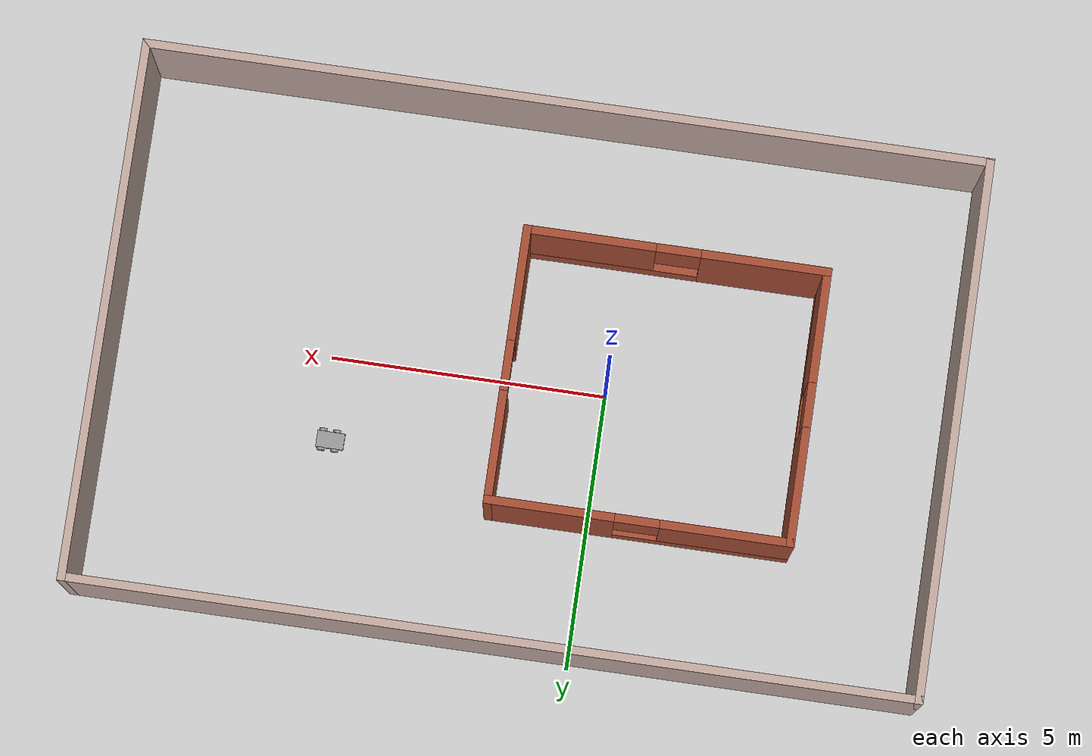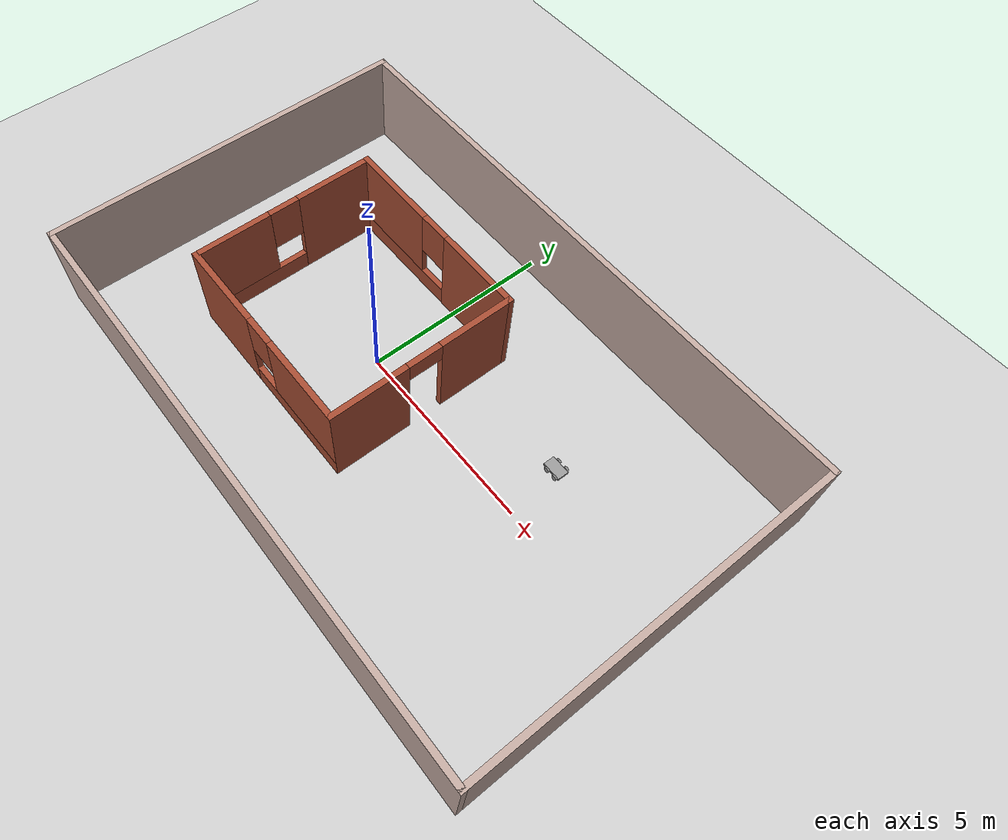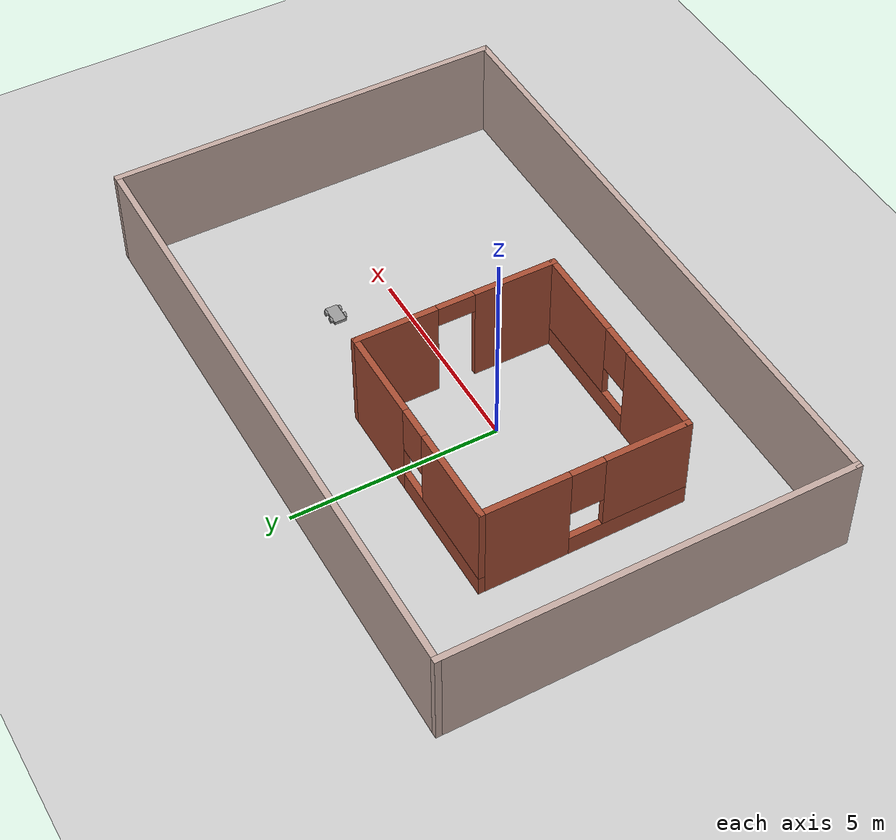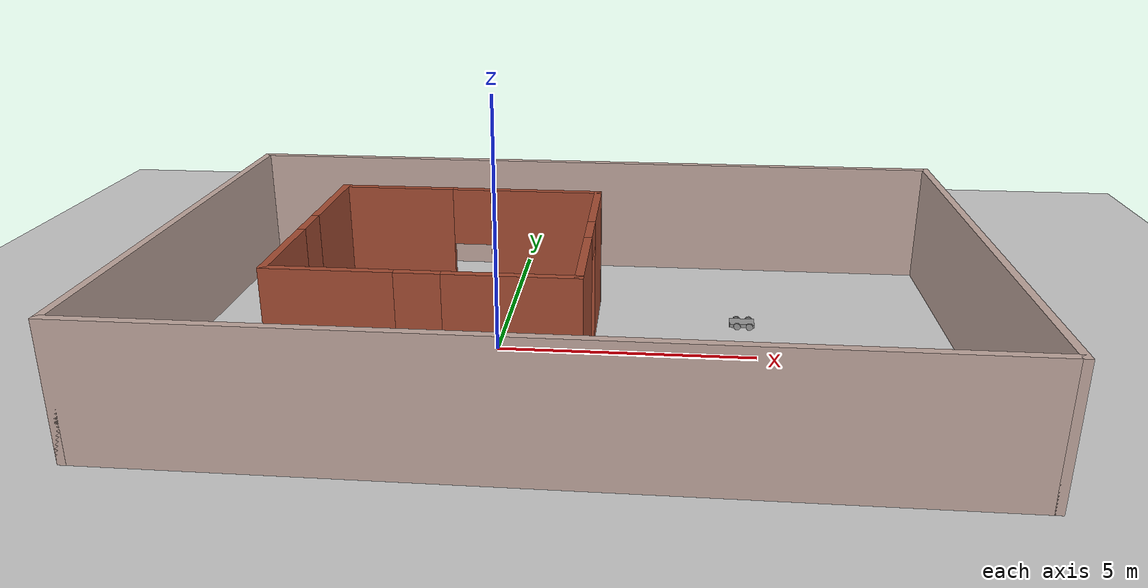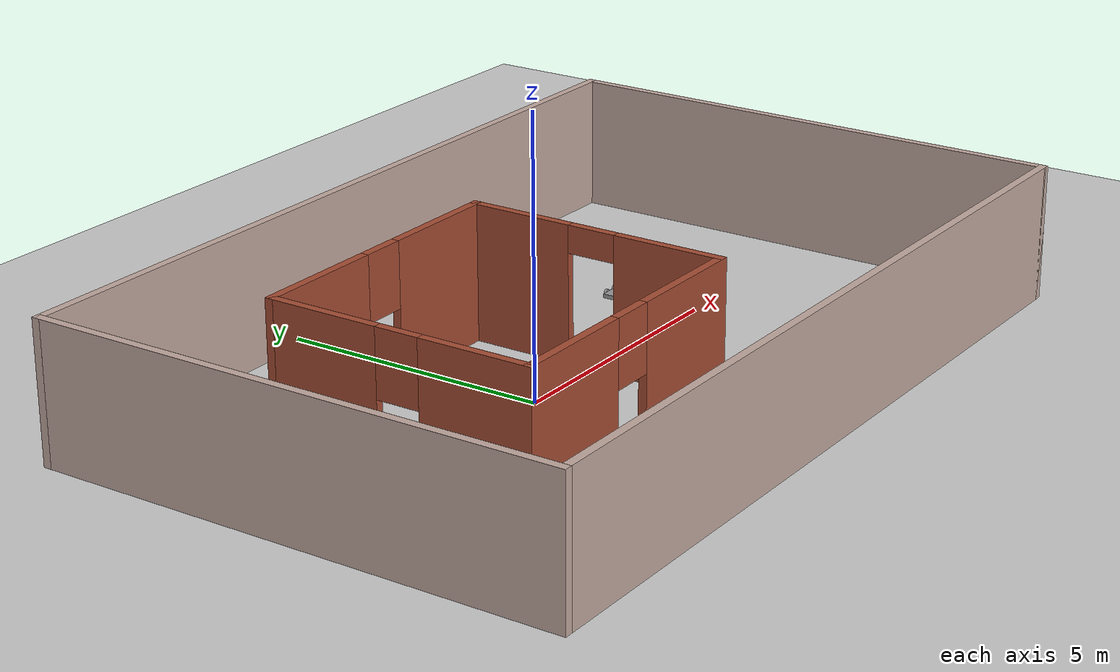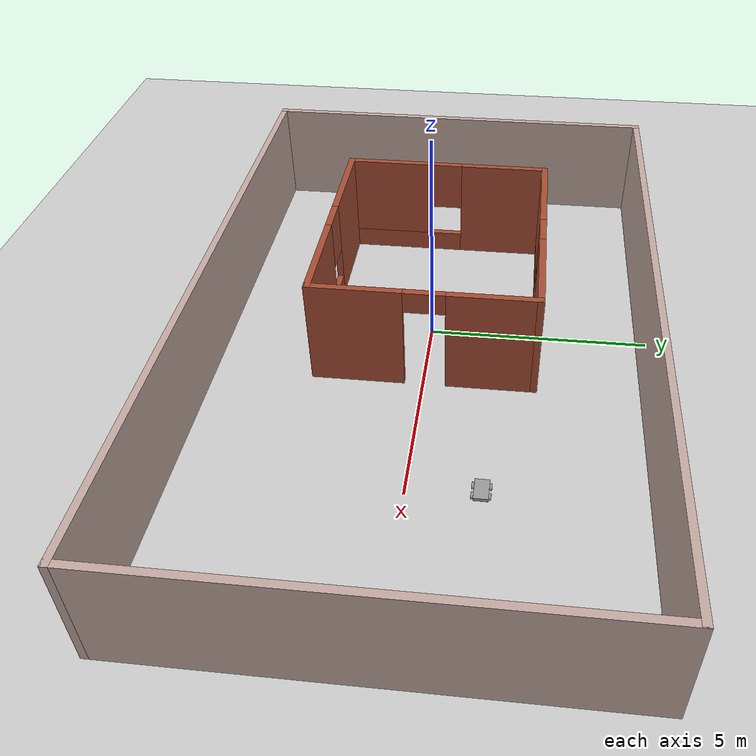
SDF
<sdf version="1.6">
 <world name="default">
  <model name="ground_plane">
   <static>1</static>
   <link name="link">
    <collision name="collision">
     <geometry><plane><normal>0 0 1</normal><size>100 100</size></plane></geometry>
     <surface><friction><ode><mu>100</mu><mu2>50</mu2></ode></friction></surface>
    </collision>
    <visual name="visual">
     <cast_shadows>0</cast_shadows>
     <geometry><plane><normal>0 0 1</normal><size>100 100</size></plane></geometry>
     <material>
      <script><uri>file://media/materials/scripts/gazebo.material</uri><name>Gazebo/Grey</name></script>
     </material>
    </visual>
   </link>
  </model>
  <model name="building">
   <pose>1.39115 0.036219 0 0 -0 0</pose>
   <link name="Wall_0">
    <collision name="Wall_0_Collision">
     <geometry><box><size>9.75 0.15 2.5</size></box></geometry>
     <pose>0 0 1.25 0 -0 0</pose>
    </collision>
    <visual name="Wall_0_Visual">
     <pose>0 0 1.25 0 -0 0</pose>
     <geometry><box><size>9.75 0.15 2.5</size></box></geometry>
     <material>
      <script><uri>file://media/materials/scripts/gazebo.material</uri><name>Gazebo/Grey</name></script>
      <ambient>0.760784 0.662745 0.627451 1</ambient>
     </material>
     <meta><layer>0</layer></meta>
    </visual>
    <pose>-7.55 0 0 0 0 -1.5708</pose>
   </link>
   <link name="Wall_1">
    <collision name="Wall_1_Collision">
     <geometry><box><size>15.25 0.15 2.5</size></box></geometry>
     <pose>0 0 1.25 0 -0 0</pose>
    </collision>
    <visual name="Wall_1_Visual">
     <pose>0 0 1.25 0 -0 0</pose>
     <geometry><box><size>15.25 0.15 2.5</size></box></geometry>
     <material>
      <script><uri>file://media/materials/scripts/gazebo.material</uri><name>Gazebo/Grey</name></script>
      <ambient>0.760784 0.662745 0.627451 1</ambient>
     </material>
     <meta><layer>0</layer></meta>
    </visual>
    <pose>0 -4.8 0 0 -0 0</pose>
   </link>
   <link name="Wall_11">
    <pose>0.384171 -0.024587 0 0 -0 1.5708</pose>
    <visual name="Wall_11_Visual_0">
     <pose>-1.46229 0 1.25 0 -0 0</pose>
     <geometry><box><size>2.07541 0.15 2.5</size></box></geometry>
     <material>
      <script><uri>file://media/materials/scripts/gazebo.material</uri><name>Gazebo/Bricks</name></script>
      <ambient>1 1 1 1</ambient>
     </material>
     <meta><layer>0</layer></meta>
    </visual>
    <collision name="Wall_11_Collision_0">
     <geometry><box><size>2.07541 0.15 2.5</size></box></geometry>
     <pose>-1.46229 0 1.25 0 -0 0</pose>
    </collision>
    <visual name="Wall_11_Visual_1">
     <pose>1.48771 0 1.25 0 -0 0</pose>
     <geometry><box><size>2.02459 0.15 2.5</size></box></geometry>
     <material>
      <script><uri>file://media/materials/scripts/gazebo.material</uri><name>Gazebo/Bricks</name></script>
      <ambient>1 1 1 1</ambient>
     </material>
     <meta><layer>0</layer></meta>
    </visual>
    <collision name="Wall_11_Collision_1">
     <geometry><box><size>2.02459 0.15 2.5</size></box></geometry>
     <pose>1.48771 0 1.25 0 -0 0</pose>
    </collision>
    <visual name="Wall_11_Visual_2">
     <pose>0.025413 0 2.25 0 -0 0</pose>
     <geometry><box><size>0.9 0.15 0.5</size></box></geometry>
     <material>
      <script><uri>file://media/materials/scripts/gazebo.material</uri><name>Gazebo/Bricks</name></script>
      <ambient>1 1 1 1</ambient>
     </material>
     <meta><layer>0</layer></meta>
    </visual>
    <collision name="Wall_11_Collision_2">
     <geometry><box><size>0.9 0.15 0.5</size></box></geometry>
     <pose>0.025413 0 2.25 0 -0 0</pose>
    </collision>
   </link>
   <link name="Wall_12">
    <pose>-2.29083 2.40041 0 0 -0 3.14159</pose>
    <visual name="Wall_12_Visual_0">
     <pose>-1.59111 0 1.25 0 -0 0</pose>
     <geometry><box><size>2.31777 0.15 2.5</size></box></geometry>
     <material>
      <script><uri>file://media/materials/scripts/gazebo.material</uri><name>Gazebo/Bricks</name></script>
      <ambient>1 1 1 1</ambient>
     </material>
     <meta><layer>0</layer></meta>
    </visual>
    <collision name="Wall_12_Collision_0">
     <geometry><box><size>2.31777 0.15 2.5</size></box></geometry>
     <pose>-1.59111 0 1.25 0 -0 0</pose>
    </collision>
    <visual name="Wall_12_Visual_1">
     <pose>1.15889 0 0.25 0 -0 0</pose>
     <geometry><box><size>3.18223 0.15 0.5</size></box></geometry>
     <material>
      <script><uri>file://media/materials/scripts/gazebo.material</uri><name>Gazebo/Bricks</name></script>
      <ambient>1 1 1 1</ambient>
     </material>
     <meta><layer>0</layer></meta>
    </visual>
    <collision name="Wall_12_Collision_1">
     <geometry><box><size>3.18223 0.15 0.5</size></box></geometry>
     <pose>1.15889 0 0.25 0 -0 0</pose>
    </collision>
    <visual name="Wall_12_Visual_2">
     <pose>1.55889 0 1.5 0 -0 0</pose>
     <geometry><box><size>2.38223 0.15 2</size></box></geometry>
     <material>
      <script><uri>file://media/materials/scripts/gazebo.material</uri><name>Gazebo/Bricks</name></script>
      <ambient>1 1 1 1</ambient>
     </material>
     <meta><layer>0</layer></meta>
    </visual>
    <collision name="Wall_12_Collision_2">
     <geometry><box><size>2.38223 0.15 2</size></box></geometry>
     <pose>1.55889 0 1.5 0 -0 0</pose>
    </collision>
    <visual name="Wall_12_Visual_3">
     <pose>-0.032227 0 1.9 0 -0 0</pose>
     <geometry><box><size>0.8 0.15 1.2</size></box></geometry>
     <material>
      <script><uri>file://media/materials/scripts/gazebo.material</uri><name>Gazebo/Bricks</name></script>
      <ambient>1 1 1 1</ambient>
     </material>
     <meta><layer>0</layer></meta>
    </visual>
    <collision name="Wall_12_Collision_3">
     <geometry><box><size>0.8 0.15 1.2</size></box></geometry>
     <pose>-0.032227 0 1.9 0 -0 0</pose>
    </collision>
   </link>
   <link name="Wall_4">
    <collision name="Wall_4_Collision">
     <geometry><box><size>15.25 0.15 2.5</size></box></geometry>
     <pose>0 0 1.25 0 -0 0</pose>
    </collision>
    <visual name="Wall_4_Visual">
     <pose>0 0 1.25 0 -0 0</pose>
     <geometry><box><size>15.25 0.15 2.5</size></box></geometry>
     <material>
      <script><uri>file://media/materials/scripts/gazebo.material</uri><name>Gazebo/Grey</name></script>
      <ambient>0.760784 0.662745 0.627451 1</ambient>
     </material>
     <meta><layer>0</layer></meta>
    </visual>
    <pose>0 4.8 0 0 -0 0</pose>
   </link>
   <link name="Wall_5">
    <collision name="Wall_5_Collision">
     <geometry><box><size>9.75 0.15 2.5</size></box></geometry>
     <pose>0 0 1.25 0 -0 0</pose>
    </collision>
    <visual name="Wall_5_Visual">
     <pose>0 0 1.25 0 -0 0</pose>
     <geometry><box><size>9.75 0.15 2.5</size></box></geometry>
     <material>
      <script><uri>file://media/materials/scripts/gazebo.material</uri><name>Gazebo/Grey</name></script>
      <ambient>0.760784 0.662745 0.627451 1</ambient>
     </material>
     <meta><layer>0</layer></meta>
    </visual>
    <pose>7.55 0 0 0 0 -1.5708</pose>
   </link>
   <link name="Wall_7">
    <pose>-4.96583 -0.024587 0 0 0 -1.5708</pose>
    <visual name="Wall_7_Visual_0">
     <pose>-1.43194 0 1.25 0 -0 0</pose>
     <geometry><box><size>2.13612 0.15 2.5</size></box></geometry>
     <material>
      <script><uri>file://media/materials/scripts/gazebo.material</uri><name>Gazebo/Bricks</name></script>
      <ambient>1 1 1 1</ambient>
     </material>
     <meta><layer>0</layer></meta>
    </visual>
    <collision name="Wall_7_Collision_0">
     <geometry><box><size>2.13612 0.15 2.5</size></box></geometry>
     <pose>-1.43194 0 1.25 0 -0 0</pose>
    </collision>
    <visual name="Wall_7_Visual_1">
     <pose>1.06806 0 0.25 0 -0 0</pose>
     <geometry><box><size>2.86388 0.15 0.5</size></box></geometry>
     <material>
      <script><uri>file://media/materials/scripts/gazebo.material</uri><name>Gazebo/Bricks</name></script>
      <ambient>1 1 1 1</ambient>
     </material>
     <meta><layer>0</layer></meta>
    </visual>
    <collision name="Wall_7_Collision_1">
     <geometry><box><size>2.86388 0.15 0.5</size></box></geometry>
     <pose>1.06806 0 0.25 0 -0 0</pose>
    </collision>
    <visual name="Wall_7_Visual_2">
     <pose>1.46806 0 1.5 0 -0 0</pose>
     <geometry><box><size>2.06388 0.15 2</size></box></geometry>
     <material>
      <script><uri>file://media/materials/scripts/gazebo.material</uri><name>Gazebo/Bricks</name></script>
      <ambient>1 1 1 1</ambient>
     </material>
     <meta><layer>0</layer></meta>
    </visual>
    <collision name="Wall_7_Collision_2">
     <geometry><box><size>2.06388 0.15 2</size></box></geometry>
     <pose>1.46806 0 1.5 0 -0 0</pose>
    </collision>
    <visual name="Wall_7_Visual_3">
     <pose>0.036115 0 1.9 0 -0 0</pose>
     <geometry><box><size>0.8 0.15 1.2</size></box></geometry>
     <material>
      <script><uri>file://media/materials/scripts/gazebo.material</uri><name>Gazebo/Bricks</name></script>
      <ambient>1 1 1 1</ambient>
     </material>
     <meta><layer>0</layer></meta>
    </visual>
    <collision name="Wall_7_Collision_3">
     <geometry><box><size>0.8 0.15 1.2</size></box></geometry>
     <pose>0.036115 0 1.9 0 -0 0</pose>
    </collision>
   </link>
   <link name="Wall_8">
    <pose>-2.29083 -2.44959 0 0 -0 0</pose>
    <visual name="Wall_8_Visual_0">
     <pose>-1.58965 0 1.25 0 -0 0</pose>
     <geometry><box><size>2.3207 0.15 2.5</size></box></geometry>
     <material>
      <script><uri>file://media/materials/scripts/gazebo.material</uri><name>Gazebo/Bricks</name></script>
      <ambient>1 1 1 1</ambient>
     </material>
     <meta><layer>0</layer></meta>
    </visual>
    <collision name="Wall_8_Collision_0">
     <geometry><box><size>2.3207 0.15 2.5</size></box></geometry>
     <pose>-1.58965 0 1.25 0 -0 0</pose>
    </collision>
    <visual name="Wall_8_Visual_1">
     <pose>1.16035 0 0.25 0 -0 0</pose>
     <geometry><box><size>3.1793 0.15 0.5</size></box></geometry>
     <material>
      <script><uri>file://media/materials/scripts/gazebo.material</uri><name>Gazebo/Bricks</name></script>
      <ambient>1 1 1 1</ambient>
     </material>
     <meta><layer>0</layer></meta>
    </visual>
    <collision name="Wall_8_Collision_1">
     <geometry><box><size>3.1793 0.15 0.5</size></box></geometry>
     <pose>1.16035 0 0.25 0 -0 0</pose>
    </collision>
    <visual name="Wall_8_Visual_2">
     <pose>1.56035 0 1.5 0 -0 0</pose>
     <geometry><box><size>2.3793 0.15 2</size></box></geometry>
     <material>
      <script><uri>file://media/materials/scripts/gazebo.material</uri><name>Gazebo/Bricks</name></script>
      <ambient>1 1 1 1</ambient>
     </material>
     <meta><layer>0</layer></meta>
    </visual>
    <collision name="Wall_8_Collision_2">
     <geometry><box><size>2.3793 0.15 2</size></box></geometry>
     <pose>1.56035 0 1.5 0 -0 0</pose>
    </collision>
    <visual name="Wall_8_Visual_3">
     <pose>-0.029301 0 1.9 0 -0 0</pose>
     <geometry><box><size>0.8 0.15 1.2</size></box></geometry>
     <material>
      <script><uri>file://media/materials/scripts/gazebo.material</uri><name>Gazebo/Bricks</name></script>
      <ambient>1 1 1 1</ambient>
     </material>
     <meta><layer>0</layer></meta>
    </visual>
    <collision name="Wall_8_Collision_3">
     <geometry><box><size>0.8 0.15 1.2</size></box></geometry>
     <pose>-0.029301 0 1.9 0 -0 0</pose>
    </collision>
   </link>
   <static>1</static>
  </model>
  <model name="fourwheelrobot_0">
   <link name="link_0">
    <pose>-0.025 0.182607 0.07 0 -0 0</pose>
    <inertial>
     <mass>1</mass>
     <inertia>
      <ixx>0.166667</ixx>
      <ixy>0</ixy>
      <ixz>0</ixz>
      <iyy>0.166667</iyy>
      <iyz>0</iyz>
      <izz>0.166667</izz>
     </inertia>
    </inertial>
    <visual name="visual">
     <geometry><box><size>0.5 0.3 0.075</size></box></geometry>
     <material>
      <lighting>1</lighting>
      <script><uri>file://media/materials/scripts/gazebo.material</uri><name>Gazebo/Grey</name></script>
      <shader type="pixel"><normal_map>__default__</normal_map></shader>
      <ambient>0.3 0.3 0.3 1</ambient>
      <diffuse>0.7 0.7 0.7 1</diffuse>
      <specular>0.01 0.01 0.01 1</specular>
      <emissive>0 0 0 1</emissive>
     </material>
    </visual>
    <collision name="collision">
     <geometry><box><size>0.5 0.3 0.075</size></box></geometry>
     <surface>
      <friction>
       <ode><mu>1</mu><mu2>1</mu2><fdir1>0 0 0</fdir1><slip1>0</slip1><slip2>0</slip2></ode>
       <torsional>
        <coefficient>1</coefficient>
        <patch_radius>0</patch_radius>
        <surface_radius>0</surface_radius>
        <use_patch_radius>1</use_patch_radius>
        <ode><slip>0</slip></ode>
       </torsional>
      </friction>
      <bounce><restitution_coefficient>0</restitution_coefficient><threshold>1e+06</threshold></bounce>
      <contact>
       <collide_without_contact>0</collide_without_contact>
       <collide_without_contact_bitmask>1</collide_without_contact_bitmask>
       <collide_bitmask>1</collide_bitmask>
       <ode>
        <soft_cfm>0</soft_cfm>
        <soft_erp>0.2</soft_erp>
        <kp>1e+13</kp>
        <kd>1</kd>
        <max_vel>0.01</max_vel>
        <min_depth>0</min_depth>
       </ode>
       <bullet>
        <split_impulse>1</split_impulse>
        <split_impulse_penetration_threshold>-0.01</split_impulse_penetration_threshold>
        <soft_cfm>0</soft_cfm>
        <soft_erp>0.2</soft_erp>
        <kp>1e+13</kp>
        <kd>1</kd>
       </bullet>
      </contact>
     </surface>
    </collision>
   </link>
   <link name="link_1">
    <pose>0.125 0.007594 0.07 1.5707 -0 0</pose>
    <inertial>
     <mass>1</mass>
     <inertia><ixx>0.145833</ixx><ixy>0</ixy><ixz>0</ixz><iyy>0.145833</iyy><iyz>0</iyz><izz>0.125</izz></inertia>
    </inertial>
    <visual name="visual">
     <geometry><cylinder><radius>0.07</radius><length>0.05</length></cylinder></geometry>
     <material>
      <lighting>1</lighting>
      <script><uri>file://media/materials/scripts/gazebo.material</uri><name>Gazebo/Grey</name></script>
      <shader type="pixel"><normal_map>__default__</normal_map></shader>
      <ambient>0.3 0.3 0.3 1</ambient>
      <diffuse>0.7 0.7 0.7 1</diffuse>
      <specular>0.01 0.01 0.01 1</specular>
      <emissive>0 0 0 1</emissive>
     </material>
    </visual>
    <collision name="collision">
     <geometry><cylinder><radius>0.07</radius><length>0.05</length></cylinder></geometry>
     <surface>
      <friction>
       <ode><mu>1</mu><mu2>1</mu2><fdir1>0 0 0</fdir1><slip1>0</slip1><slip2>0</slip2></ode>
       <torsional>
        <coefficient>1</coefficient>
        <patch_radius>0</patch_radius>
        <surface_radius>0</surface_radius>
        <use_patch_radius>1</use_patch_radius>
        <ode><slip>0</slip></ode>
       </torsional>
      </friction>
      <bounce><restitution_coefficient>0</restitution_coefficient><threshold>1e+06</threshold></bounce>
      <contact>
       <collide_without_contact>0</collide_without_contact>
       <collide_without_contact_bitmask>1</collide_without_contact_bitmask>
       <collide_bitmask>1</collide_bitmask>
       <ode>
        <soft_cfm>0</soft_cfm>
        <soft_erp>0.2</soft_erp>
        <kp>1e+13</kp>
        <kd>1</kd>
        <max_vel>0.01</max_vel>
        <min_depth>0</min_depth>
       </ode>
       <bullet>
        <split_impulse>1</split_impulse>
        <split_impulse_penetration_threshold>-0.01</split_impulse_penetration_threshold>
        <soft_cfm>0</soft_cfm>
        <soft_erp>0.2</soft_erp>
        <kp>1e+13</kp>
        <kd>1</kd>
       </bullet>
      </contact>
     </surface>
    </collision>
   </link>
   <link name="link_1_clone">
    <pose>-0.125 0.0076 0.07 1.5707 -0 0</pose>
    <inertial>
     <mass>1</mass>
     <inertia><ixx>0.145833</ixx><ixy>0</ixy><ixz>0</ixz><iyy>0.145833</iyy><iyz>0</iyz><izz>0.125</izz></inertia>
    </inertial>
    <visual name="visual">
     <geometry><cylinder><radius>0.07</radius><length>0.05</length></cylinder></geometry>
     <material>
      <lighting>1</lighting>
      <script><uri>file://media/materials/scripts/gazebo.material</uri><name>Gazebo/Grey</name></script>
      <shader type="pixel"><normal_map>__default__</normal_map></shader>
      <ambient>0.3 0.3 0.3 1</ambient>
      <diffuse>0.7 0.7 0.7 1</diffuse>
      <specular>0.01 0.01 0.01 1</specular>
      <emissive>0 0 0 1</emissive>
     </material>
    </visual>
    <collision name="collision">
     <geometry><cylinder><radius>0.07</radius><length>0.05</length></cylinder></geometry>
     <surface>
      <friction>
       <ode><mu>1</mu><mu2>1</mu2><fdir1>0 0 0</fdir1><slip1>0</slip1><slip2>0</slip2></ode>
       <torsional>
        <coefficient>1</coefficient>
        <patch_radius>0</patch_radius>
        <surface_radius>0</surface_radius>
        <use_patch_radius>1</use_patch_radius>
        <ode><slip>0</slip></ode>
       </torsional>
      </friction>
      <bounce><restitution_coefficient>0</restitution_coefficient><threshold>1e+06</threshold></bounce>
      <contact>
       <collide_without_contact>0</collide_without_contact>
       <collide_without_contact_bitmask>1</collide_without_contact_bitmask>
       <collide_bitmask>1</collide_bitmask>
       <ode>
        <soft_cfm>0</soft_cfm>
        <soft_erp>0.2</soft_erp>
        <kp>1e+13</kp>
        <kd>1</kd>
        <max_vel>0.01</max_vel>
        <min_depth>0</min_depth>
       </ode>
       <bullet>
        <split_impulse>1</split_impulse>
        <split_impulse_penetration_threshold>-0.01</split_impulse_penetration_threshold>
        <soft_cfm>0</soft_cfm>
        <soft_erp>0.2</soft_erp>
        <kp>1e+13</kp>
        <kd>1</kd>
       </bullet>
      </contact>
     </surface>
    </collision>
   </link>
   <link name="link_1_clone_0">
    <pose>0.125 0.357614 0.07 1.5707 -0 0</pose>
    <inertial>
     <mass>1</mass>
     <inertia><ixx>0.145833</ixx><ixy>0</ixy><ixz>0</ixz><iyy>0.145833</iyy><iyz>0</iyz><izz>0.125</izz></inertia>
    </inertial>
    <visual name="visual">
     <geometry><cylinder><radius>0.07</radius><length>0.05</length></cylinder></geometry>
     <material>
      <lighting>1</lighting>
      <script><uri>file://media/materials/scripts/gazebo.material</uri><name>Gazebo/Grey</name></script>
      <shader type="pixel"><normal_map>__default__</normal_map></shader>
      <ambient>0.3 0.3 0.3 1</ambient>
      <diffuse>0.7 0.7 0.7 1</diffuse>
      <specular>0.01 0.01 0.01 1</specular>
      <emissive>0 0 0 1</emissive>
     </material>
    </visual>
    <collision name="collision">
     <geometry><cylinder><radius>0.07</radius><length>0.05</length></cylinder></geometry>
     <surface>
      <friction>
       <ode><mu>1</mu><mu2>1</mu2><fdir1>0 0 0</fdir1><slip1>0</slip1><slip2>0</slip2></ode>
       <torsional>
        <coefficient>1</coefficient>
        <patch_radius>0</patch_radius>
        <surface_radius>0</surface_radius>
        <use_patch_radius>1</use_patch_radius>
        <ode><slip>0</slip></ode>
       </torsional>
      </friction>
      <bounce><restitution_coefficient>0</restitution_coefficient><threshold>1e+06</threshold></bounce>
      <contact>
       <collide_without_contact>0</collide_without_contact>
       <collide_without_contact_bitmask>1</collide_without_contact_bitmask>
       <collide_bitmask>1</collide_bitmask>
       <ode>
        <soft_cfm>0</soft_cfm>
        <soft_erp>0.2</soft_erp>
        <kp>1e+13</kp>
        <kd>1</kd>
        <max_vel>0.01</max_vel>
        <min_depth>0</min_depth>
       </ode>
       <bullet>
        <split_impulse>1</split_impulse>
        <split_impulse_penetration_threshold>-0.01</split_impulse_penetration_threshold>
        <soft_cfm>0</soft_cfm>
        <soft_erp>0.2</soft_erp>
        <kp>1e+13</kp>
        <kd>1</kd>
       </bullet>
      </contact>
     </surface>
    </collision>
   </link>
   <link name="link_1_clone_1">
    <pose>-0.125 0.357614 0.07 1.5707 -0 0</pose>
    <inertial>
     <mass>1</mass>
     <inertia><ixx>0.145833</ixx><ixy>0</ixy><ixz>0</ixz><iyy>0.145833</iyy><iyz>0</iyz><izz>0.125</izz></inertia>
    </inertial>
    <visual name="visual">
     <geometry><cylinder><radius>0.07</radius><length>0.05</length></cylinder></geometry>
     <material>
      <lighting>1</lighting>
      <script><uri>file://media/materials/scripts/gazebo.material</uri><name>Gazebo/Grey</name></script>
      <shader type="pixel"><normal_map>__default__</normal_map></shader>
      <ambient>0.3 0.3 0.3 1</ambient>
      <diffuse>0.7 0.7 0.7 1</diffuse>
      <specular>0.01 0.01 0.01 1</specular>
      <emissive>0 0 0 1</emissive>
     </material>
    </visual>
    <collision name="collision">
     <geometry><cylinder><radius>0.07</radius><length>0.05</length></cylinder></geometry>
     <surface>
      <friction>
       <ode><mu>1</mu><mu2>1</mu2><fdir1>0 0 0</fdir1><slip1>0</slip1><slip2>0</slip2></ode>
       <torsional>
        <coefficient>1</coefficient>
        <patch_radius>0</patch_radius>
        <surface_radius>0</surface_radius>
        <use_patch_radius>1</use_patch_radius>
        <ode><slip>0</slip></ode>
       </torsional>
      </friction>
      <bounce><restitution_coefficient>0</restitution_coefficient><threshold>1e+06</threshold></bounce>
      <contact>
       <collide_without_contact>0</collide_without_contact>
       <collide_without_contact_bitmask>1</collide_without_contact_bitmask>
       <collide_bitmask>1</collide_bitmask>
       <ode>
        <soft_cfm>0</soft_cfm>
        <soft_erp>0.2</soft_erp>
        <kp>1e+13</kp>
        <kd>1</kd>
        <max_vel>0.01</max_vel>
        <min_depth>0</min_depth>
       </ode>
       <bullet>
        <split_impulse>1</split_impulse>
        <split_impulse_penetration_threshold>-0.01</split_impulse_penetration_threshold>
        <soft_cfm>0</soft_cfm>
        <soft_erp>0.2</soft_erp>
        <kp>1e+13</kp>
        <kd>1</kd>
       </bullet>
      </contact>
     </surface>
    </collision>
   </link>
   <joint name="link_0_JOINT_0" type="revolute">
    <parent>link_0</parent>
    <child>link_1</child>
    <axis>
     <xyz>0 0 1</xyz>
     <use_parent_model_frame>0</use_parent_model_frame>
     <limit>
      <lower>-1.79769e+308</lower>
      <upper>1.79769e+308</upper>
      <effort>-1</effort>
      <velocity>-1</velocity>
     </limit>
     <dynamics>
      <spring_reference>0</spring_reference>
      <spring_stiffness>0</spring_stiffness>
      <damping>0</damping>
      <friction>0</friction>
     </dynamics>
    </axis>
    <physics>
     <ode><limit><cfm>0</cfm><erp>0.2</erp></limit><suspension><cfm>0</cfm><erp>0.2</erp></suspension></ode>
    </physics>
   </joint>
   <joint name="link_0_JOINT_1" type="revolute">
    <parent>link_0</parent>
    <child>link_1_clone</child>
    <axis>
     <xyz>0 0 1</xyz>
     <use_parent_model_frame>0</use_parent_model_frame>
     <limit>
      <lower>-1.79769e+308</lower>
      <upper>1.79769e+308</upper>
      <effort>-1</effort>
      <velocity>-1</velocity>
     </limit>
     <dynamics>
      <spring_reference>0</spring_reference>
      <spring_stiffness>0</spring_stiffness>
      <damping>0</damping>
      <friction>0</friction>
     </dynamics>
    </axis>
    <physics>
     <ode><limit><cfm>0</cfm><erp>0.2</erp></limit><suspension><cfm>0</cfm><erp>0.2</erp></suspension></ode>
    </physics>
   </joint>
   <joint name="link_0_JOINT_2" type="revolute">
    <parent>link_0</parent>
    <child>link_1_clone_0</child>
    <axis>
     <xyz>0 0 1</xyz>
     <use_parent_model_frame>0</use_parent_model_frame>
     <limit>
      <lower>-1.79769e+308</lower>
      <upper>1.79769e+308</upper>
      <effort>-1</effort>
      <velocity>-1</velocity>
     </limit>
     <dynamics>
      <spring_reference>0</spring_reference>
      <spring_stiffness>0</spring_stiffness>
      <damping>0</damping>
      <friction>0</friction>
     </dynamics>
    </axis>
    <physics>
     <ode><limit><cfm>0</cfm><erp>0.2</erp></limit><suspension><cfm>0</cfm><erp>0.2</erp></suspension></ode>
    </physics>
   </joint>
   <joint name="link_0_JOINT_3" type="revolute">
    <parent>link_0</parent>
    <child>link_1_clone_1</child>
    <axis>
     <xyz>0 0 1</xyz>
     <use_parent_model_frame>0</use_parent_model_frame>
     <limit>
      <lower>-1.79769e+308</lower>
      <upper>1.79769e+308</upper>
      <effort>-1</effort>
      <velocity>-1</velocity>
     </limit>
     <dynamics>
      <spring_reference>0</spring_reference>
      <spring_stiffness>0</spring_stiffness>
      <damping>0</damping>
      <friction>0</friction>
     </dynamics>
    </axis>
    <physics>
     <ode><limit><cfm>0</cfm><erp>0.2</erp></limit><suspension><cfm>0</cfm><erp>0.2</erp></suspension></ode>
    </physics>
   </joint>
   <static>0</static>
   <pose>4.82403 1.31293 1e-06 0 1.5e-05 -0.011359</pose>
  </model>
 </world>
</sdf>
